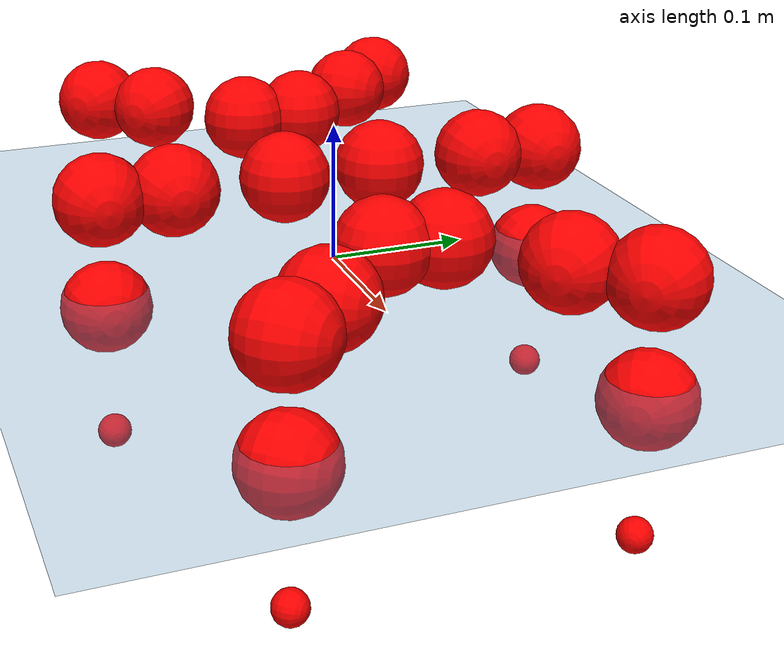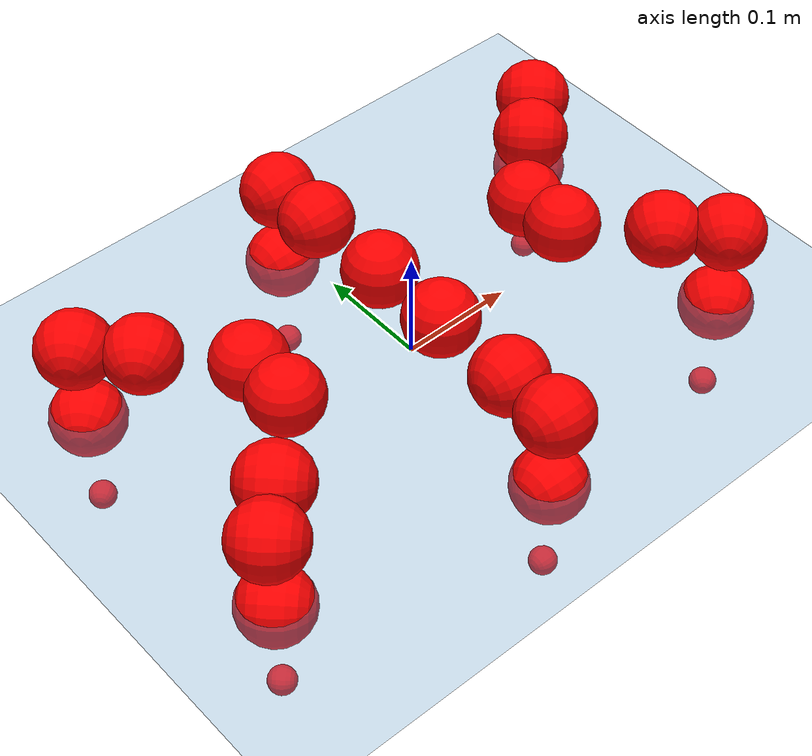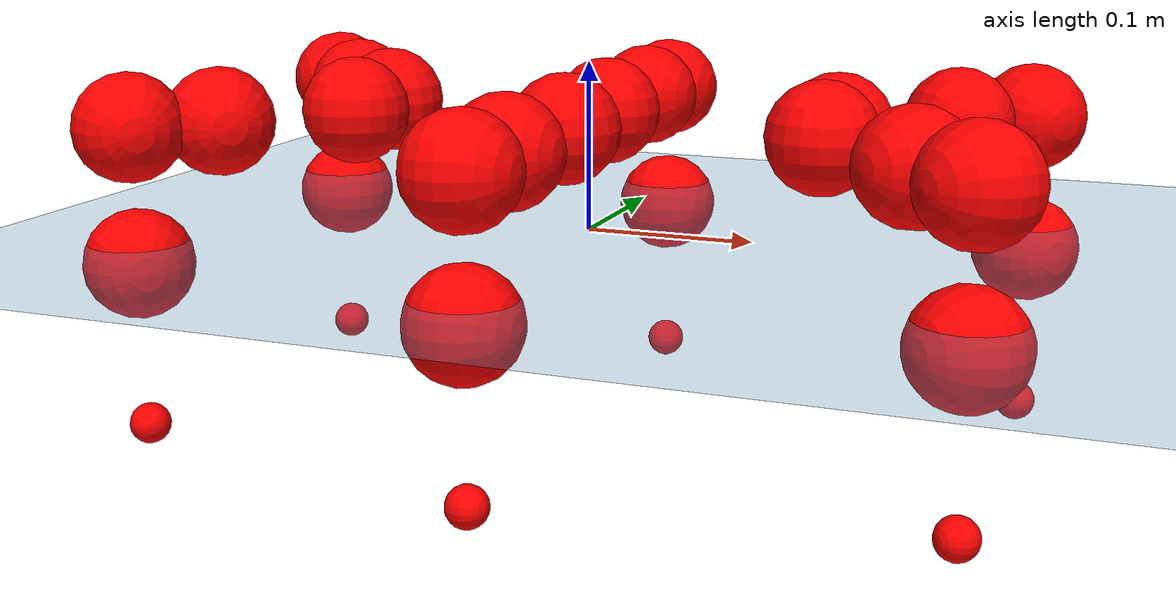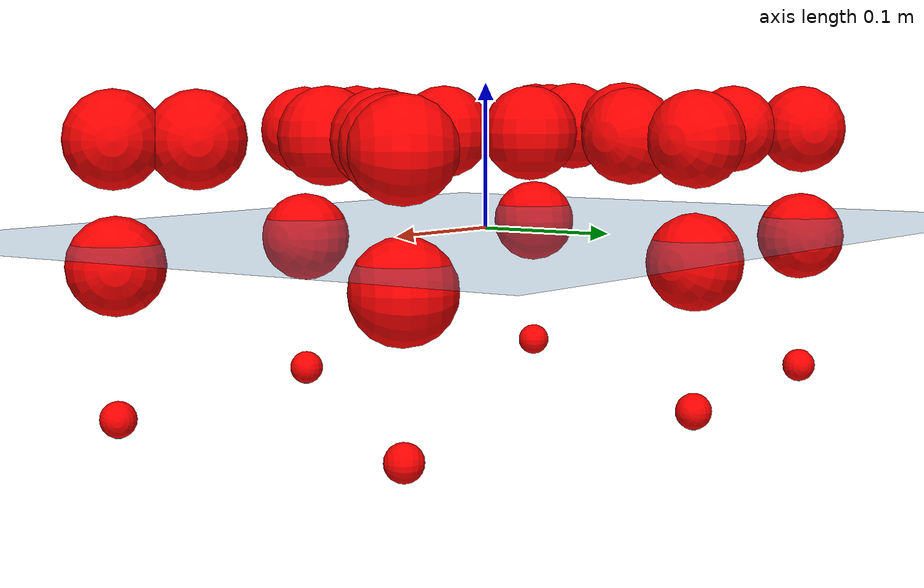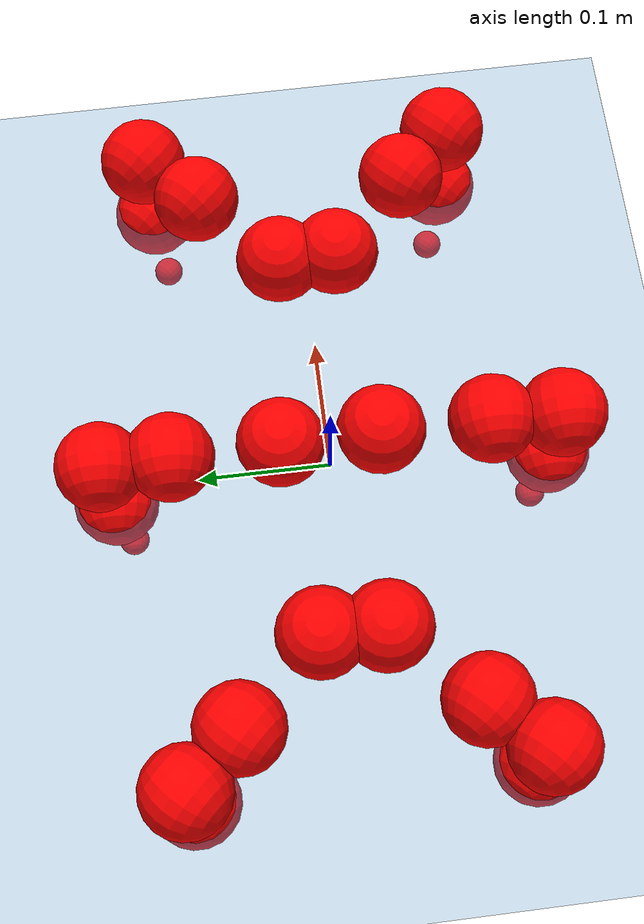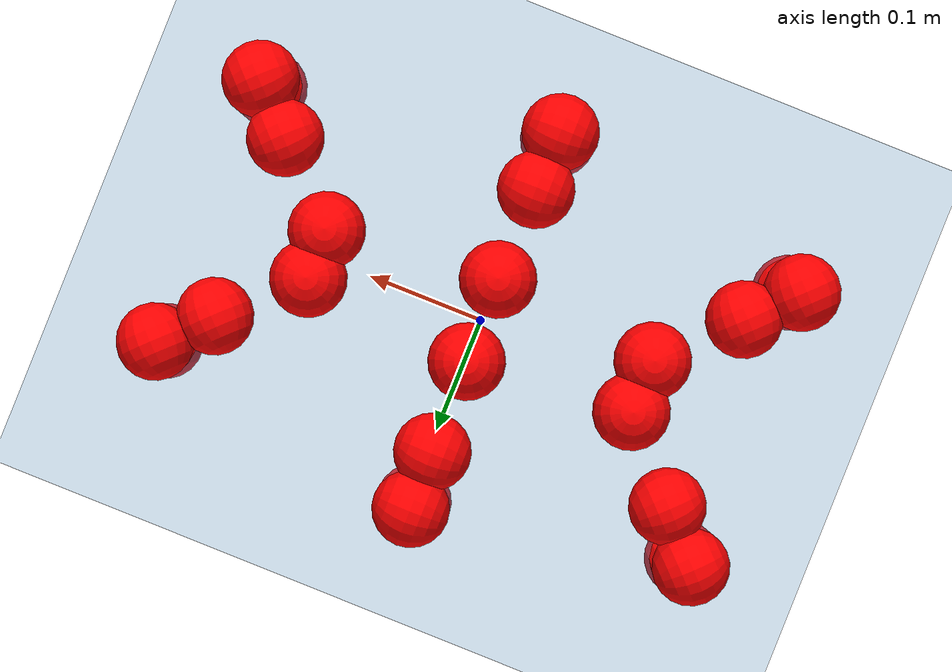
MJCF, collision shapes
<mujoco model="Golem">
  <compiler angle="radian" assetdir="assets" balanceinertia="true" inertiafromgeom="false"/>

  <option timestep="0.005" density="1.2" viscosity="2e-05"/>

  <size nkey="1"/>

  <visual>
    <quality shadowsize="8192"/>
    <map shadowclip="0.5"/>
  </visual>

  <default>
    <default class="/">
      <joint armature="0.01" damping="0.01" frictionloss="0.01"/>
      <geom contype="0" conaffinity="0" group="1" solref="-1000 -80"/>
      <site size="0.01 0.005 0.005" group="5"/>
      <general forcelimited="true" biastype="affine" gainprm="25" biasprm="0 -25 -0.5"/>
      <default class="visual">
        <geom type="mesh" group="2"/>
      </default>
      <default class="collision">
        <geom group="3"/>
      </default>
      <default class="foot">
        <geom size="0.01 0 0" condim="6" group="4" priority="1" solimp="0.015 1 0.01"/>
      </default>
      <default class="reward_collision_sphere">
        <geom group="5" rgba="1 0 0 1"/>
      </default>
    </default>
  </default>

  <asset>
    <texture type="skybox" colorspace="auto" name="//unnamed_texture_0" builtin="gradient" rgb1="0.95 0.95 0.95" rgb2="0.95 0.95 0.95" width="100" height="600"/>
    <texture type="2d" colorspace="auto" name="texplane" builtin="checker" rgb1="0.345 0.575 0.748" rgb2="0.345 0.575 0.748" markrgb="1 1 1" width="512" height="512"/>
    <material name="MatPlane" class="/" texture="texplane" texuniform="true" texrepeat="2 2" specular="0.9"/>
    <mesh name="body" class="/" file="body.stl" scale="0.001 0.001 0.001"/>
    <mesh name="coxa" class="/" file="coxa.stl" scale="0.001 0.001 0.001"/>
    <mesh name="femur" class="/" file="femur.stl" scale="0.001 0.001 0.001"/>
    <mesh name="tibia" class="/" file="tibia.stl" scale="0.001 0.001 0.001"/>
    <mesh name="tarsus" class="/" file="tarsus.stl" scale="0.001 0.001 0.001"/>
  </asset>

  <worldbody>
    <geom name="floor" class="/" size="100 100 0.125" type="plane" group="0" material="MatPlane"/>
    <light name="toplight_shadow" class="/" pos="0 0 5" dir="0.0990148 0.0990148 -0.990148" type="directional" ambient="0.04 0.04 0.04" diffuse="0.55 0.55 0.55" specular="0.12 0.12 0.12"/>
    <light name="toplight_fill" class="/" pos="0 0 5" dir="0.0990148 0.0990148 -0.990148" type="directional" castshadow="false" ambient="0.04 0.04 0.04" diffuse="0.3 0.3 0.3" specular="0.08 0.08 0.08"/>
    <body name="trunk" pos="-0.000142719 0.000125356 0.00041466" quat="1 -5.32199e-05 0.000322055 7.54386e-05">
      <inertial pos="0.000498227 -0.000781801 -0.00345733" quat="1 0.000205547 -0.000225834 -0.000296347" mass="1.9398" diaginertia="0.00638701 0.000263751 0.0111264"/>
      <joint name="//unnamed_joint_0" type="free"/>
      <geom name="//unnamed_geom_1" class="/" pos="0 0 0.0653427" quat="1 0 0 0" type="mesh" rgba="0.9 0.9 0.9 1" mesh="body"/>
      <site name="imu" class="/" pos="0.120553 0.00429769 0.102833" size="0.0080567"/>
      <camera name="track" class="/" pos="0 -0.965102 0" quat="0.707107 0.707107 0 0" mode="trackcom"/>
      <camera name="ego_camera" class="/" pos="0.118752 0 0.102098" quat="-0.5 -0.5 0.5 0.5"/>
      <body name="coxa_RR" pos="-0.162556 -0.041106 0.0666491" quat="0.382371 0.00010301 0.000209982 -0.924009">
        <inertial pos="-7.959e-05 3.64177e-05 0.0002102" quat="0.999991 -0.000905244 -0.00189814 -0.00366595" mass="0.103326" diaginertia="0.00633056 0.000260447 0.01104"/>
        <joint name="coxa_joint_RR" class="/" pos="0 0 0" axis="-0.000239159 0.00180774 -0.999998" range="-3.12683 3.13562" armature="0.00805656" damping="0.00681428" frictionloss="0.00770855"/>
        <geom name="//unnamed_geom_2" class="/" type="mesh" rgba="0.2 0.2 0.2 1" mesh="coxa"/>
        <geom name="//unnamed_geom_3" class="reward_collision_sphere" size="0.0322268" pos="-0.0274044 0 0"/>
        <body name="femur_RR" pos="0.0548503 0.00159209 -0.00134478" quat="0.499957 -0.50001 0.500005 0.500028">
          <inertial pos="0.000244474 -0.000262094 -0.000531876" quat="0.999999 -0.000208151 0.000996924 0.000868099" mass="0.104038" diaginertia="0.00629539 0.000258561 0.0110606"/>
          <joint name="femur_joint_RR" class="/" pos="0 0 0" axis="7.01299e-05 -0.00253759 -0.999997" range="-3.13806 3.1354" armature="0.00816701" damping="0.00121068" frictionloss="0.00801314"/>
          <geom name="//unnamed_geom_4" class="/" type="mesh" rgba="0.9 0.9 0.9 1" mesh="femur"/>
          <geom name="//unnamed_geom_5" class="reward_collision_sphere" size="0.0322268"/>
          <body name="tibia_RR" pos="0.000118107 -0.0523602 0.00153572" quat="-9.90086e-05 1 0.000359314 0.000240695">
            <inertial pos="-0.000541199 -0.000507404 -0.000377968" quat="0.999999 -0.000376298 0.00082288 0.000755744" mass="0.103959" diaginertia="0.00635727 0.000262036 0.0111342"/>
            <joint name="tibia_joint_RR" class="/" pos="0 0 0" axis="0.000163738 0.000430943 1" range="-3.13491 3.13425" armature="0.00826851" damping="0" frictionloss="0.00790758"/>
            <geom name="//unnamed_geom_6" class="/" type="mesh" rgba="0.2 0.2 0.2 1" mesh="tibia"/>
            <geom name="//unnamed_geom_7" class="reward_collision_sphere" size="0.0322268"/>
            <body name="tarsus_RR" pos="0.0795785 -0.000809463 -0.00144852" quat="1 7.67517e-06 5.75378e-05 -2.58886e-05">
              <inertial pos="0.0549289 0.000646752 0.000486836" quat="0.500109 0.499884 0.500017 0.49999" mass="0.103432" diaginertia="0.0062461 0.000261602 0.0108575"/>
              <joint name="tarsus_joint_RR" class="/" pos="0 0 0" axis="-0.00391903 0.0027729 0.999988" range="-3.12525 3.13184" armature="0.00791351" damping="0.00470692" frictionloss="0.00824213"/>
              <geom name="//unnamed_geom_8" class="/" type="mesh" rgba="0.9 0.9 0.9 1" mesh="tarsus"/>
              <geom name="foot_1" class="foot" size="0.00783399" pos="0.10231 0 0" quat="0 -0.707107 0 0.707107"/>
              <geom name="//unnamed_geom_10" class="reward_collision_sphere" size="0.0322268"/>
              <geom name="//unnamed_geom_11" class="reward_collision_sphere" size="0.0120851" pos="0.0981991 0 0"/>
              <site name="foot_1" class="foot" pos="0.10231 0 0" quat="0 -0.707107 0 0.707107" size="0.0080567"/>
            </body>
          </body>
        </body>
      </body>
      <body name="coxa_RM" pos="-0.000849565 -0.063873 0.0655932" quat="0.707127 -1.41422e-05 1.89569e-06 -0.707087">
        <inertial pos="-0.000506471 0.000175747 6.55809e-05" quat="0.999999 -0.000352037 -0.00102373 0.000468155" mass="0.104493" diaginertia="0.00631886 0.000261642 0.0110561"/>
        <joint name="coxa_joint_RM" class="/" pos="0 0 0" axis="0.000521177 0.00109486 -0.999999" range="-3.13579 3.12993" armature="0.00822569" damping="0.0118428" frictionloss="0.00836087"/>
        <geom name="//unnamed_geom_12" class="/" type="mesh" rgba="0.2 0.2 0.2 1" mesh="coxa"/>
        <geom name="//unnamed_geom_13" class="reward_collision_sphere" size="0.0322268" pos="-0.0274044 0 0"/>
        <body name="femur_RM" pos="0.0524837 -0.00157463 -0.000319189" quat="0.500082 -0.500003 0.499765 0.500149">
          <inertial pos="-0.000820082 0.000244036 -0.000108766" quat="0.999998 -0.00071531 0.00177776 -0.000883584" mass="0.102972" diaginertia="0.00627882 0.000261019 0.0110722"/>
          <joint name="femur_joint_RM" class="/" pos="0 0 0" axis="4.33267e-05 0.000146664 -1" range="-3.12413 3.14136" armature="0.00818617" damping="0.00168966" frictionloss="0.00772624"/>
          <geom name="//unnamed_geom_14" class="/" type="mesh" rgba="0.9 0.9 0.9 1" mesh="femur"/>
          <geom name="//unnamed_geom_15" class="reward_collision_sphere" size="0.0322268"/>
          <body name="tibia_RM" pos="0.000933202 -0.0511508 -0.00121518" quat="9.67723e-05 1 -3.85755e-05 -8.3036e-05">
            <inertial pos="-0.000211628 -4.412e-05 0.000240765" quat="0.999999 -0.00112371 -0.00100363 0.000196285" mass="0.10495" diaginertia="0.00635903 0.000260582 0.0110363"/>
            <joint name="tibia_joint_RM" class="/" pos="0 0 0" axis="-0.000989211 -0.000354135 0.999999" range="-3.12994 3.14804" armature="0.00803944" damping="0.00410555" frictionloss="0.00826381"/>
            <geom name="//unnamed_geom_16" class="/" type="mesh" rgba="0.2 0.2 0.2 1" mesh="tibia"/>
            <geom name="//unnamed_geom_17" class="reward_collision_sphere" size="0.0322268"/>
            <body name="tarsus_RM" pos="0.0791037 0.000126609 0.000181259" quat="1 -2.50344e-05 3.73907e-05 -2.68229e-05">
              <inertial pos="0.0540316 -0.000442047 0.00045744" quat="0.502669 0.500225 0.496958 0.500131" mass="0.105202" diaginertia="0.00630355 0.000260027 0.0112089"/>
              <joint name="tarsus_joint_RM" class="/" pos="0 0 0" axis="0.000606023 -0.000333689 1" range="-3.1342 3.12316" armature="0.0082766" damping="0.00364204" frictionloss="0.00794214"/>
              <geom name="//unnamed_geom_18" class="/" type="mesh" rgba="0.9 0.9 0.9 1" mesh="tarsus"/>
              <geom name="foot_2" class="foot" size="0.00812135" pos="0.10231 0 0" quat="0 -0.707107 0 0.707107"/>
              <geom name="//unnamed_geom_20" class="reward_collision_sphere" size="0.0322268"/>
              <geom name="//unnamed_geom_21" class="reward_collision_sphere" size="0.0120851" pos="0.0981991 0 0"/>
              <site name="foot_2" class="foot" pos="0.10231 0 0" quat="0 -0.707107 0 0.707107" size="0.0080567"/>
            </body>
          </body>
        </body>
      </body>
      <body name="coxa_RF" pos="0.163758 -0.0410277 0.066645" quat="0.923879 0.000129363 0.000104249 -0.382685">
        <inertial pos="0.000933959 -0.00108783 -0.000673102" quat="0.999993 0.00339851 0.00125946 -0.0010672" mass="0.10421" diaginertia="0.00628913 0.000262807 0.0110703"/>
        <joint name="coxa_joint_RF" class="/" pos="0 0 0" axis="0.00294323 -0.00174919 -0.999994" range="-3.12831 3.14011" armature="0.00840036" damping="0.00702413" frictionloss="0.00799283"/>
        <geom name="//unnamed_geom_22" class="/" type="mesh" rgba="0.2 0.2 0.2 1" mesh="coxa"/>
        <geom name="//unnamed_geom_23" class="reward_collision_sphere" size="0.0322268" pos="-0.0274044 0 0"/>
        <body name="femur_RF" pos="0.0556511 0.00143969 -0.00185956" quat="0.5 -0.499996 0.500007 0.499997">
          <inertial pos="-9.77564e-05 0.000440534 0.000135489" quat="0.999999 0.000729133 8.79867e-05 -0.000922873" mass="0.103836" diaginertia="0.0064144 0.000260146 0.0110026"/>
          <joint name="femur_joint_RF" class="/" pos="0 0 0" axis="2.37471e-05 -1.28977e-05 -1" range="-3.15433 3.13695" armature="0.00823608" damping="0.000915049" frictionloss="0.00805299"/>
          <geom name="//unnamed_geom_24" class="/" type="mesh" rgba="0.9 0.9 0.9 1" mesh="femur"/>
          <geom name="//unnamed_geom_25" class="reward_collision_sphere" size="0.0322268"/>
          <body name="tibia_RF" pos="-0.000356174 -0.0523119 -0.000416706" quat="0.000138167 1 0.000181024 -0.000166348">
            <inertial pos="0.000396104 -0.000686691 0.000208296" quat="0.999992 -6.49416e-05 0.00408018 0.000440987" mass="0.103759" diaginertia="0.00630458 0.000260721 0.010997"/>
            <joint name="tibia_joint_RF" class="/" pos="0 0 0" axis="0.00162031 0.00177656 0.999997" range="-3.14823 3.13317" armature="0.00805326" damping="0.00887872" frictionloss="0.00806715"/>
            <geom name="//unnamed_geom_26" class="/" type="mesh" rgba="0.2 0.2 0.2 1" mesh="tibia"/>
            <geom name="//unnamed_geom_27" class="reward_collision_sphere" size="0.0322268"/>
            <body name="tarsus_RF" pos="0.0804666 -0.000537797 0.000649217" quat="1 -5.19868e-06 -2.52125e-05 3.49585e-05">
              <inertial pos="0.0546709 0.000382226 0.000527319" quat="0.500114 0.497782 0.499474 0.502618" mass="0.105499" diaginertia="0.0063515 0.000260085 0.0110314"/>
              <joint name="tarsus_joint_RF" class="/" pos="0 0 0" axis="-0.00246244 -0.00292073 0.999993" stiffness="0.000301377" range="-3.13364 3.14507" armature="0.00802754" damping="0.00175033" frictionloss="0.00772461"/>
              <geom name="//unnamed_geom_28" class="/" type="mesh" rgba="0.9 0.9 0.9 1" mesh="tarsus"/>
              <geom name="foot_3" class="foot" size="0.00820156" pos="0.10231 0 0" quat="0 -0.707107 0 0.707107"/>
              <geom name="//unnamed_geom_30" class="reward_collision_sphere" size="0.0322268"/>
              <geom name="//unnamed_geom_31" class="reward_collision_sphere" size="0.0120851" pos="0.0981991 0 0"/>
              <site name="foot_3" class="foot" pos="0.10231 0 0" quat="0 -0.707107 0 0.707107" size="0.0080567"/>
            </body>
          </body>
        </body>
      </body>
      <body name="coxa_LR" pos="-0.161835 0.0427863 0.067228" quat="0.382715 1.43632e-05 -7.09132e-05 0.923867">
        <inertial pos="0.000235451 -0.000438069 0.00171017" quat="0.999995 0.00208791 0.00187813 0.00123687" mass="0.105206" diaginertia="0.00637952 0.000262514 0.0111317"/>
        <joint name="coxa_joint_LR" class="/" pos="0 0 0" axis="0.000270857 -0.000341233 -1" range="-3.14845 3.13377" armature="0.00821773" damping="0.00223759" frictionloss="0.007989"/>
        <geom name="//unnamed_geom_32" class="/" type="mesh" rgba="0.2 0.2 0.2 1" mesh="coxa"/>
        <geom name="//unnamed_geom_33" class="reward_collision_sphere" size="0.0322268" pos="-0.0274044 0 0"/>
        <body name="femur_LR" pos="0.0558271 -0.00348711 -0.00238114" quat="0.500105 -0.499887 0.499999 0.500008">
          <inertial pos="-8.62315e-05 -0.000430643 -0.000594797" quat="1 -0.000551171 -0.000478991 -0.000155561" mass="0.104341" diaginertia="0.00637871 0.000262089 0.0110258"/>
          <joint name="femur_joint_LR" class="/" pos="0 0 0" axis="0.000359592 -0.000278519 1" range="-3.1529 3.15311" armature="0.00812929" damping="0.0044246" frictionloss="0.00826882"/>
          <geom name="//unnamed_geom_34" class="/" type="mesh" rgba="0.9 0.9 0.9 1" mesh="femur"/>
          <geom name="//unnamed_geom_35" class="reward_collision_sphere" size="0.0322268"/>
          <body name="tibia_LR" pos="0.000453706 -0.0530944 -0.00173789" quat="-0.000117456 1 -1.82762e-05 0.000170071">
            <inertial pos="-0.000388316 0.000815062 -0.000533601" quat="0.999999 0.000679753 0.000717671 0.00126742" mass="0.105025" diaginertia="0.00632541 0.00025763 0.0110335"/>
            <joint name="tibia_joint_LR" class="/" pos="0 0 0" axis="-0.00281034 0.000276385 -0.999996" range="-3.13466 3.14239" armature="0.00789712" damping="0.0028458" frictionloss="0.00837487"/>
            <geom name="//unnamed_geom_36" class="/" type="mesh" rgba="0.2 0.2 0.2 1" mesh="tibia"/>
            <geom name="//unnamed_geom_37" class="reward_collision_sphere" size="0.0322268"/>
            <body name="tarsus_LR" pos="0.0800986 -0.000820669 0.000965538" quat="1 6.68675e-05 6.78724e-05 0.000105573">
              <inertial pos="0.0552191 0.00105333 -0.000209321" quat="0.500439 0.500189 0.500157 0.499213" mass="0.105086" diaginertia="0.00640478 0.000264245 0.0111632"/>
              <joint name="tarsus_joint_LR" class="/" pos="0 0 0" axis="-2.43447e-05 3.98343e-06 -1" range="-3.1363 3.13881" armature="0.00801572" damping="0" frictionloss="0.00817721"/>
              <geom name="//unnamed_geom_38" class="/" type="mesh" rgba="0.9 0.9 0.9 1" mesh="tarsus"/>
              <geom name="foot_4" class="foot" size="0.0080464" pos="0.10231 0 0" quat="0.707107 0 -0.707107 0"/>
              <geom name="//unnamed_geom_40" class="reward_collision_sphere" size="0.0322268"/>
              <geom name="//unnamed_geom_41" class="reward_collision_sphere" size="0.0120851" pos="0.0981991 0 0"/>
              <site name="foot_4" class="foot" pos="0.10231 0 0" quat="0.707107 0 -0.707107 0" size="0.0080567"/>
            </body>
          </body>
        </body>
      </body>
      <body name="coxa_LM" pos="-0.00201251 0.0629349 0.0658719" quat="0.707078 -0.000646878 -0.000125408 0.707135">
        <inertial pos="0.000577293 -0.000236053 -0.000328045" quat="1 -2.21352e-05 -1.04316e-05 4.52123e-06" mass="0.105668" diaginertia="0.00645839 0.000263869 0.0111143"/>
        <joint name="coxa_joint_LM" class="/" pos="0 0 0" axis="0.000859561 -0.000636962 -0.999999" stiffness="0.00324653" range="-3.12876 3.12886" armature="0.00839067" damping="0.00332786" frictionloss="0.00782573"/>
        <geom name="//unnamed_geom_42" class="/" type="mesh" rgba="0.2 0.2 0.2 1" mesh="coxa"/>
        <geom name="//unnamed_geom_43" class="reward_collision_sphere" size="0.0322268" pos="-0.0274044 0 0"/>
        <body name="femur_LM" pos="0.0517237 0.00140322 -0.000644743" quat="0.499974 -0.499915 0.500094 0.500016">
          <inertial pos="-9.59474e-05 0.000889023 0.000197425" quat="0.999991 -0.00392938 0.00159609 -0.000822356" mass="0.105044" diaginertia="0.00631559 0.000260123 0.0110101"/>
          <joint name="femur_joint_LM" class="/" pos="0 0 0" axis="0.000151065 5.78685e-05 1" stiffness="0.000220852" range="-3.1312 3.1425" armature="0.00835891" damping="0.0021536" frictionloss="0.00770982"/>
          <geom name="//unnamed_geom_44" class="/" type="mesh" rgba="0.9 0.9 0.9 1" mesh="femur"/>
          <geom name="//unnamed_geom_45" class="reward_collision_sphere" size="0.0322268"/>
          <body name="tibia_LM" pos="0.00102951 -0.049927 0.000788607" quat="0.000128844 1 4.69063e-05 -1.01054e-05">
            <inertial pos="-0.0003024 -0.0010896 -0.000117695" quat="1 4.20897e-05 8.21698e-05 -5.9887e-06" mass="0.104458" diaginertia="0.00643499 0.000263242 0.0111418"/>
            <joint name="tibia_joint_LM" class="/" pos="0 0 0" axis="-0.00038617 -0.000851583 -1" range="-3.15365 3.13751" armature="0.00798131" damping="0.000453165" frictionloss="0.00839569"/>
            <geom name="//unnamed_geom_46" class="/" type="mesh" rgba="0.2 0.2 0.2 1" mesh="tibia"/>
            <geom name="//unnamed_geom_47" class="reward_collision_sphere" size="0.0322268"/>
            <body name="tarsus_LM" pos="0.0801791 -0.000386732 -0.000432727" quat="1 0.000115036 1.13822e-05 0.000144937">
              <inertial pos="0.055819 -2.6371e-05 -0.000207594" quat="0.500029 0.500028 0.499952 0.499991" mass="0.106244" diaginertia="0.00638237 0.000263048 0.0110811"/>
              <joint name="tarsus_joint_LM" class="/" pos="0 0 0" axis="0.00396694 -0.0020422 -0.99999" range="-3.13324 3.15317" armature="0.00808247" damping="4.77947e-05" frictionloss="0.00825347"/>
              <geom name="//unnamed_geom_48" class="/" type="mesh" rgba="0.9 0.9 0.9 1" mesh="tarsus"/>
              <geom name="foot_5" class="foot" size="0.00822166" pos="0.10231 0 0" quat="0.707107 0 -0.707107 0"/>
              <geom name="//unnamed_geom_50" class="reward_collision_sphere" size="0.0322268"/>
              <geom name="//unnamed_geom_51" class="reward_collision_sphere" size="0.0120851" pos="0.0981991 0 0"/>
              <site name="foot_5" class="foot" pos="0.10231 0 0" quat="0.707107 0 -0.707107 0" size="0.0080567"/>
            </body>
          </body>
        </body>
      </body>
      <body name="coxa_LF" pos="0.163097 0.0400483 0.0654899" quat="0.923901 -5.89572e-05 -0.000107879 0.382633">
        <inertial pos="-0.000138883 0.000895494 0.000305956" quat="0.999998 0.00070913 0.000562726 -0.0018242" mass="0.105459" diaginertia="0.00640345 0.000264758 0.0112004"/>
        <joint name="coxa_joint_LF" class="/" pos="0 0 0" axis="-0.00108021 -0.00227623 -0.999997" stiffness="0.000558507" range="-3.12224 3.14211" armature="0.0079937" damping="0.00160015" frictionloss="0.0077454"/>
        <geom name="//unnamed_geom_52" class="/" type="mesh" rgba="0.2 0.2 0.2 1" mesh="coxa"/>
        <geom name="//unnamed_geom_53" class="reward_collision_sphere" size="0.0322268" pos="-0.0274044 0 0"/>
        <body name="femur_LF" pos="0.0551469 -0.00186021 -0.00120044" quat="0.499768 -0.50038 0.499682 0.500169">
          <inertial pos="0.000201131 -0.000191011 -0.000371561" quat="0.999996 0.000604376 0.00146727 -0.00248813" mass="0.104371" diaginertia="0.00633644 0.000261028 0.0111908"/>
          <joint name="femur_joint_LF" class="/" pos="0 0 0" axis="0.000295396 -5.93806e-06 1" range="-3.14501 3.1508" armature="0.00813753" damping="0" frictionloss="0.00776251"/>
          <geom name="//unnamed_geom_54" class="/" type="mesh" rgba="0.9 0.9 0.9 1" mesh="femur"/>
          <geom name="//unnamed_geom_55" class="reward_collision_sphere" size="0.0322268"/>
          <body name="tibia_LF" pos="0.000501475 -0.0533857 -0.000281298" quat="2.30965e-05 1 8.79246e-06 6.67107e-05">
            <inertial pos="0.000358688 0.000242761 -0.000209345" quat="0.999993 0.00112499 -0.00240924 0.00257259" mass="0.103562" diaginertia="0.00635517 0.000264349 0.0112147"/>
            <joint name="tibia_joint_LF" class="/" pos="0 0 0" axis="7.66007e-05 0.00018126 -1" range="-3.14876 3.1328" armature="0.00776" damping="0" frictionloss="0.00839457"/>
            <geom name="//unnamed_geom_56" class="/" type="mesh" rgba="0.2 0.2 0.2 1" mesh="tibia"/>
            <geom name="//unnamed_geom_57" class="reward_collision_sphere" size="0.0322268"/>
            <body name="tarsus_LF" pos="0.0808624 0.000623811 0.000250014" quat="1 -1.73714e-05 1.45418e-05 4.2766e-05">
              <inertial pos="0.0571759 1.78978e-05 0.000844729" quat="0.499777 0.500581 0.499614 0.500027" mass="0.104369" diaginertia="0.00639303 0.000262799 0.0111314"/>
              <joint name="tarsus_joint_LF" class="/" pos="0 0 0" axis="-0.000702697 -0.00226523 -0.999997" stiffness="0.0298252" range="-3.13754 3.11832" armature="0.008045" damping="0.0227749" frictionloss="0.00813538"/>
              <geom name="//unnamed_geom_58" class="/" type="mesh" rgba="0.9 0.9 0.9 1" mesh="tarsus"/>
              <geom name="foot_6" class="foot" size="0.00795275" pos="0.10231 0 0" quat="0.707107 0 -0.707107 0"/>
              <geom name="//unnamed_geom_60" class="reward_collision_sphere" size="0.0322268"/>
              <geom name="//unnamed_geom_61" class="reward_collision_sphere" size="0.0120851" pos="0.0981991 0 0"/>
              <site name="foot_6" class="foot" pos="0.10231 0 0" quat="0.707107 0 -0.707107 0" size="0.0080567"/>
            </body>
          </body>
        </body>
      </body>
    </body>
  </worldbody>

  <contact>
    <pair class="/" geom1="floor" geom2="foot_1" name="//unnamed_contact_0"/>
    <pair class="/" geom1="floor" geom2="foot_2" name="//unnamed_contact_1"/>
    <pair class="/" geom1="floor" geom2="foot_3" name="//unnamed_contact_2"/>
    <pair class="/" geom1="floor" geom2="foot_4" name="//unnamed_contact_3"/>
    <pair class="/" geom1="floor" geom2="foot_5" name="//unnamed_contact_4"/>
    <pair class="/" geom1="floor" geom2="foot_6" name="//unnamed_contact_5"/>
  </contact>

  <actuator>
    <general name="coxa_joint_RR" class="/" joint="coxa_joint_RR" forcerange="-5.71791 5.71791" gainprm="19.0701" biasprm="0 -19.0701 -0.413723"/>
    <general name="femur_joint_RR" class="/" joint="femur_joint_RR" forcerange="-5.77379 5.77379" gainprm="19.0701" biasprm="0 -19.0701 -0.413723"/>
    <general name="tibia_joint_RR" class="/" joint="tibia_joint_RR" forcerange="-5.79196 5.79196" gainprm="19.0701" biasprm="0 -19.0701 -0.413723"/>
    <general name="tarsus_joint_RR" class="/" joint="tarsus_joint_RR" forcerange="-5.98699 5.98699" gainprm="19.0701" biasprm="0 -19.0701 -0.413723"/>
    <general name="coxa_joint_RM" class="/" joint="coxa_joint_RM" forcerange="-5.72287 5.72287" gainprm="19.0701" biasprm="0 -19.0701 -0.413723"/>
    <general name="femur_joint_RM" class="/" joint="femur_joint_RM" forcerange="-5.79274 5.79274" gainprm="19.0701" biasprm="0 -19.0701 -0.413723"/>
    <general name="tibia_joint_RM" class="/" joint="tibia_joint_RM" forcerange="-6.00885 6.00885" gainprm="19.0701" biasprm="0 -19.0701 -0.413723"/>
    <general name="tarsus_joint_RM" class="/" joint="tarsus_joint_RM" forcerange="-5.9903 5.9903" gainprm="19.0701" biasprm="0 -19.0701 -0.413723"/>
    <general name="coxa_joint_RF" class="/" joint="coxa_joint_RF" forcerange="-5.87674 5.87674" gainprm="19.0701" biasprm="0 -19.0701 -0.413723"/>
    <general name="femur_joint_RF" class="/" joint="femur_joint_RF" forcerange="-5.88382 5.88382" gainprm="19.0701" biasprm="0 -19.0701 -0.413723"/>
    <general name="tibia_joint_RF" class="/" joint="tibia_joint_RF" forcerange="-5.97809 5.97809" gainprm="19.0701" biasprm="0 -19.0701 -0.413723"/>
    <general name="tarsus_joint_RF" class="/" joint="tarsus_joint_RF" forcerange="-5.81627 5.81627" gainprm="19.0701" biasprm="0 -19.0701 -0.413723"/>
    <general name="coxa_joint_LR" class="/" joint="coxa_joint_LR" forcerange="-5.7253 5.7253" gainprm="19.0701" biasprm="0 -19.0701 -0.413723"/>
    <general name="femur_joint_LR" class="/" joint="femur_joint_LR" forcerange="-6.06164 6.06164" gainprm="19.0701" biasprm="0 -19.0701 -0.413723"/>
    <general name="tibia_joint_LR" class="/" joint="tibia_joint_LR" forcerange="-5.99359 5.99359" gainprm="19.0701" biasprm="0 -19.0701 -0.413723"/>
    <general name="tarsus_joint_LR" class="/" joint="tarsus_joint_LR" forcerange="-5.84923 5.84923" gainprm="19.0701" biasprm="0 -19.0701 -0.413723"/>
    <general name="coxa_joint_LM" class="/" joint="coxa_joint_LM" forcerange="-5.87002 5.87002" gainprm="19.0701" biasprm="0 -19.0701 -0.413723"/>
    <general name="femur_joint_LM" class="/" joint="femur_joint_LM" forcerange="-5.88541 5.88541" gainprm="19.0701" biasprm="0 -19.0701 -0.413723"/>
    <general name="tibia_joint_LM" class="/" joint="tibia_joint_LM" forcerange="-5.78261 5.78261" gainprm="19.0701" biasprm="0 -19.0701 -0.413723"/>
    <general name="tarsus_joint_LM" class="/" joint="tarsus_joint_LM" forcerange="-5.89634 5.89634" gainprm="19.0701" biasprm="0 -19.0701 -0.413723"/>
    <general name="coxa_joint_LF" class="/" joint="coxa_joint_LF" forcerange="-5.79837 5.79837" gainprm="19.0701" biasprm="0 -19.0701 -0.413723"/>
    <general name="femur_joint_LF" class="/" joint="femur_joint_LF" forcerange="-5.82276 5.82276" gainprm="19.0701" biasprm="0 -19.0701 -0.413723"/>
    <general name="tibia_joint_LF" class="/" joint="tibia_joint_LF" forcerange="-5.84157 5.84157" gainprm="19.0701" biasprm="0 -19.0701 -0.413723"/>
    <general name="tarsus_joint_LF" class="/" joint="tarsus_joint_LF" forcerange="-5.81943 5.81943" gainprm="19.0701" biasprm="0 -19.0701 -0.413723"/>
  </actuator>

  <sensor>
    <gyro site="imu" name="imu_angular_velocity"/>
    <velocimeter site="imu" name="imu_linear_velocity"/>
    <framelinvel objtype="site" objname="foot_1" name="foot_1_global_linear_velocity"/>
    <framelinvel objtype="site" objname="foot_2" name="foot_2_global_linear_velocity"/>
    <framelinvel objtype="site" objname="foot_3" name="foot_3_global_linear_velocity"/>
    <framelinvel objtype="site" objname="foot_4" name="foot_4_global_linear_velocity"/>
    <framelinvel objtype="site" objname="foot_5" name="foot_5_global_linear_velocity"/>
    <framelinvel objtype="site" objname="foot_6" name="foot_6_global_linear_velocity"/>
  </sensor>

  <keyframe>
    <key name="home" qpos="0 0 0.1457 1 0 0 0 0 0 0 0 0 0 0 0 0 0 0 0 0 0 0 0 0 0 0 0 0 0 0 0"/>
  </keyframe>
</mujoco>
